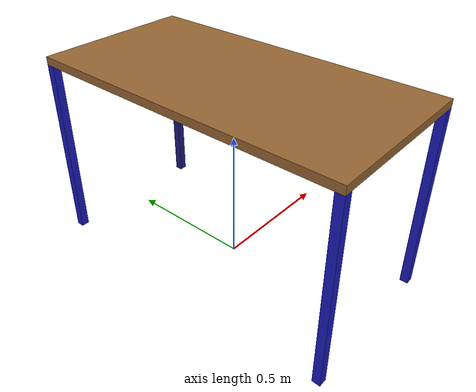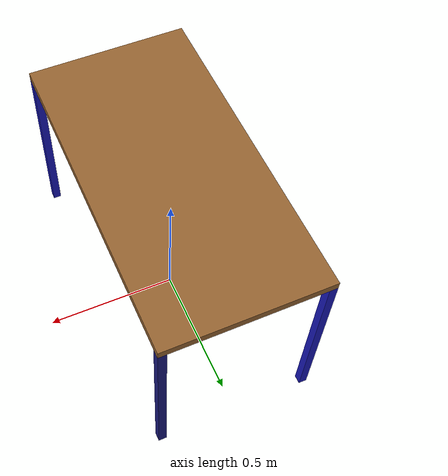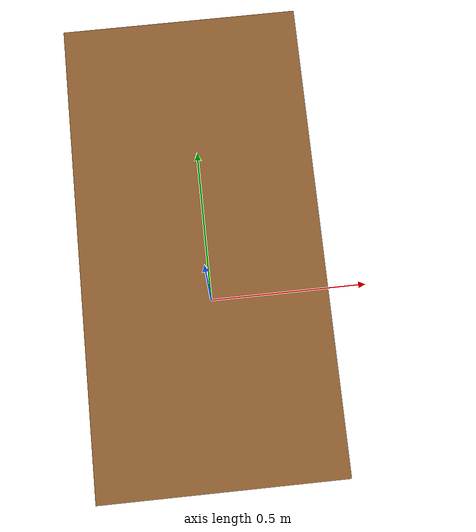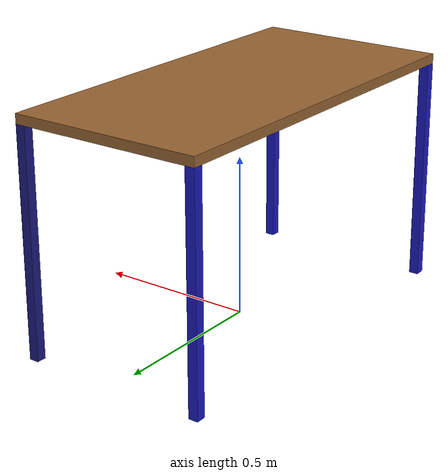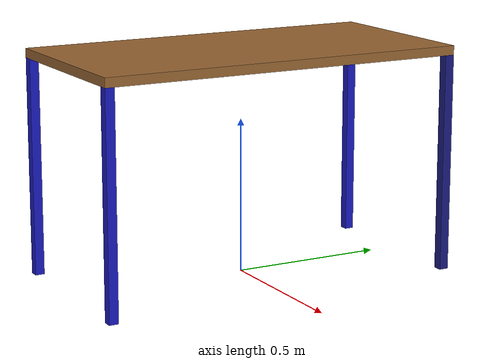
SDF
<?xml version="1.0" ?>
<sdf version="1.9">
    <world name="tmp_world">
        <model name="table#1_1">
            <static>true</static>
            <pose>0 0 0 0 0 0</pose>
            <link name='base'> </link>
            <joint name="fix_to_world_0" type="fixed">
                <parent>base</parent>
                <child>table_top</child>
            </joint>
            <joint name="fix_to_world_1" type="fixed">
                <parent>base</parent>
                <child>table_leg_1</child>
            </joint>
            <joint name="fix_to_world_2" type="fixed">
                <parent>base</parent>
                <child>table_leg_2</child>
            </joint>
            <joint name="fix_to_world_3" type="fixed">
                <parent>base</parent>
                <child>table_leg_3</child>
            </joint>
            <joint name="fix_to_world_4" type="fixed">
                <parent>base</parent>
                <child>table_leg_4</child>
            </joint>
            <link name="table_top">
                <pose>0.0 0.0 0.715 0 0 0</pose>
                <collision name="table_top_collision">
                  <geometry> <box><size>0.6 1.2 0.03</size></box></geometry>
                </collision>
                <visual name="table_top_visual">
                  <geometry> <box><size>0.6 1.2 0.03</size></box></geometry>
                    <material>
                        <ambient>0.6 0.4 0.2 1</ambient>
                    </material>
                </visual>
            </link>
            <link name="table_leg_1">
                <pose>-0.285 -0.585 0.35 0 0 0</pose>
                <collision name="table_leg_1_collision">
                  <geometry><box><size>0.03 0.03 0.7</size></box></geometry>
                </collision>
                <visual name="table_leg_1_visual">
                  <geometry><box><size>0.03 0.03 0.7</size></box></geometry>
                  <material><diffuse>0.1 0.1 0.75 1</diffuse></material>
                </visual>
            </link>
            <link name="table_leg_2">
                <pose>-0.285 0.585 0.35 0 0 0</pose>
                <collision name="table_leg_2_collision">
                  <geometry><box><size>0.03 0.03 0.7</size></box></geometry>
                </collision>
                <visual name="table_leg_2_visual">
                  <geometry><box><size>0.03 0.03 0.7</size></box></geometry>
                  <material><diffuse>0.1 0.1 0.75 1</diffuse></material>
                </visual>
            </link>
            <link name="table_leg_3">
                <pose>0.285 -0.585 0.35 0 0 0</pose>
                <collision name="table_leg_3_collision">
                  <geometry><box><size>0.03 0.03 0.7</size></box></geometry>
                </collision>
                <visual name="table_leg_3_visual">
                  <geometry><box><size>0.03 0.03 0.7</size></box></geometry>
                  <material><diffuse>0.1 0.1 0.75 1</diffuse></material>
                </visual>
            </link>
            <link name="table_leg_4">
                <pose>0.285 0.585 0.35 0 0 0</pose>
                <collision name="table_leg_4_collision">
                  <geometry><box><size>0.03 0.03 0.7</size></box></geometry>
                </collision>
                <visual name="table_leg_4_visual">
                  <geometry><box><size>0.03 0.03 0.7</size></box></geometry>
                  <material><diffuse>0.1 0.1 0.5 1</diffuse></material>
                </visual>
            </link>
        </model>
    </world>
</sdf>
